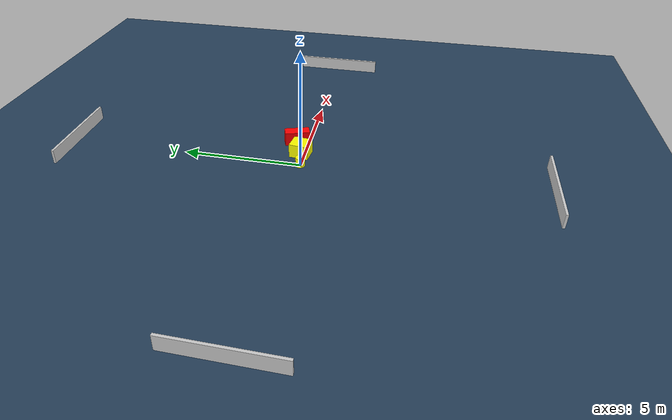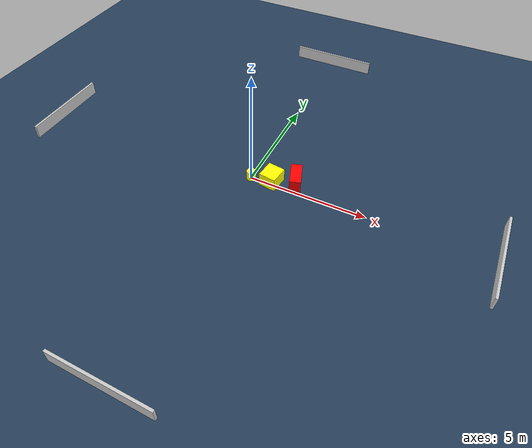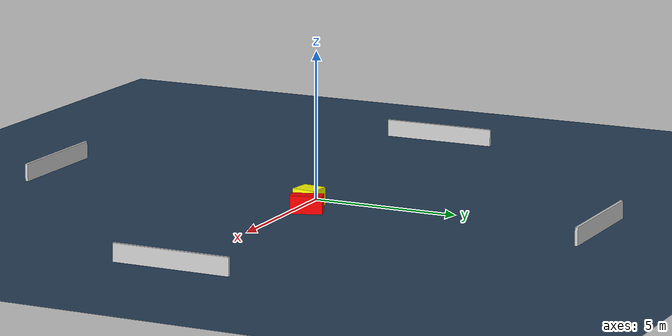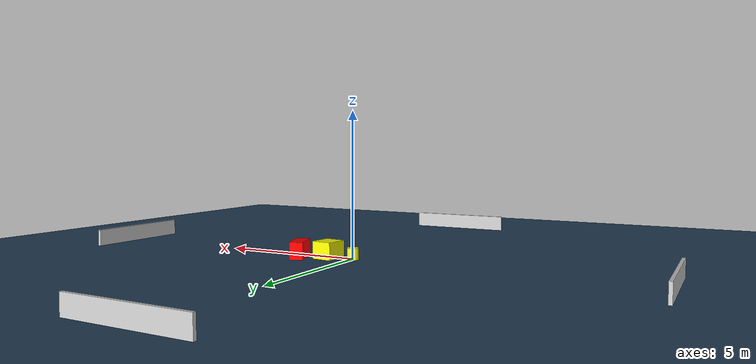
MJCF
<?xml version="1.0" ?>
<mujoco model="generated_environment">
  <option timestep="0.01" integrator="RK4" cone="elliptic"/>
  <default>
    <geom density="1"/>
  </default>
  <asset>
    <texture builtin="gradient" height="3072" name="skybox" rgb1="0.3 0.5 0.7" rgb2="0 0 0" type="skybox" width="512"/>
    <texture builtin="checker" height="300" name="groundplane" rgb1="0.2 0.3 0.4" rgb2="0.1 0.2 0.3" type="2d" width="300"/>
    <material name="groundplane" reflectance="0.2" texrepeat="5 5" texture="groundplane"/>
  </asset>
  <worldbody>
    <light dir="0 0 -1" directional="true" pos="0 0 1.5"/>
    <geom condim="3" friction="0.5 0.005 0.001" material="groundplane" name="floor" pos="0 0 0" size="0 0 0.05" type="plane"/>
    <body name="walls">
      <geom name="wall_1" condim="4" pos="-10.0 0.0 0.3" rgba="0.800000011920929 0.800000011920929 0.800000011920929 1.0" size="0.05 2.0 0.3" type="box"/>
      <geom name="wall_2" condim="4" pos="10.0 0.0 0.3" rgba="0.800000011920929 0.800000011920929 0.800000011920929 1.0" size="0.05 2.0 0.3" type="box"/>
      <geom name="wall_3" condim="4" pos="0.0 -10.0 0.3" rgba="0.800000011920929 0.800000011920929 0.800000011920929 1.0" size="2.0 0.05 0.3" type="box"/>
      <geom name="wall_4" condim="4" pos="0.0 10.0 0.3" rgba="0.800000011920929 0.800000011920929 0.800000011920929 1.0" size="2.0 0.05 0.3" type="box"/>
    </body>
    <body name="robot">
      <joint name="joint_x" type="slide" pos="0 0 0" axis="1 0 0"/>
      <joint name="joint_y" type="slide" pos="0 0 0" axis="0 1 0"/>
      <geom name="robot" type="cylinder" pos="0.0 0.0 0.2" size="0.2 0.2 0.0" mass="5.0" friction="1.0 0.005 0.0001" condim="4" rgba="1.0 1.0 0.0 1.0"/>
    </body>
    <body name="obstacle_1_movable">
      <geom name="obstacle_1_movable" condim="4" pos="0.8688031652645533 0.16126797299548667 0.3" euler="0 0 262.6530405946755" friction="0.0 0.005 0.001" rgba="1.0 1.0 0.0 1.0" size="0.40605318748653907 0.36793450548006046 0.3" type="box" mass="0.1"/>
      <joint type="free"/>
    </body>
    <body name="obstacle_2_static">
      <geom name="obstacle_2_static" condim="4" pos="1.7934784841609206 0.5263277477773244 0.3" euler="0 0 18.68577658264082" friction="0.0 0.005 0.001" rgba="1.0 0.0 0.0 1.0" size="0.23678650026573445 0.5346547719102446 0.3" type="box"/>
    </body>
  </worldbody>
  <actuator>
    <motor name="actuator_x" joint="joint_x" gear="1" ctrlrange="-1 1"/>
    <motor name="actuator_y" joint="joint_y" gear="1" ctrlrange="-1 1"/>
  </actuator>
</mujoco>
